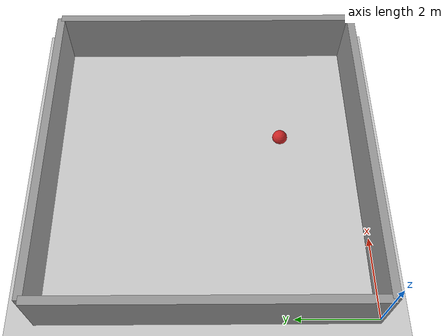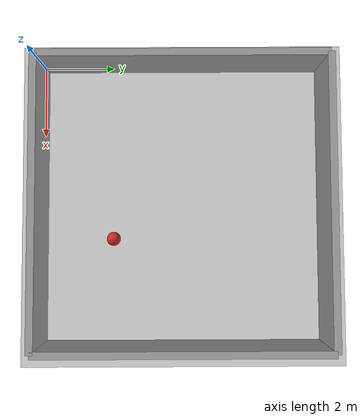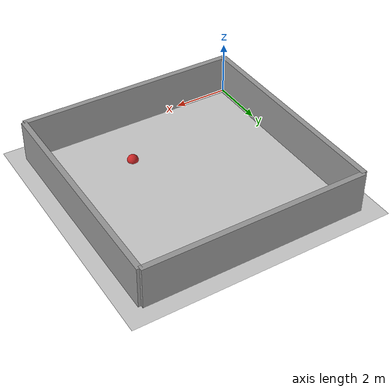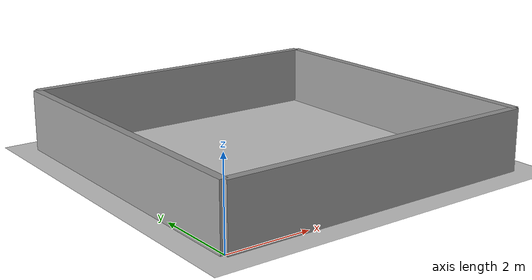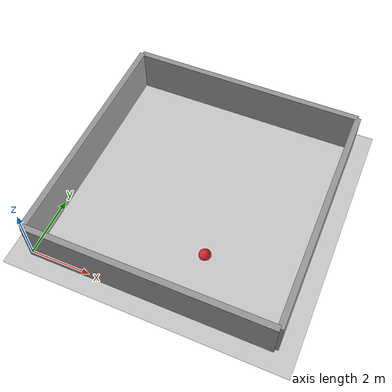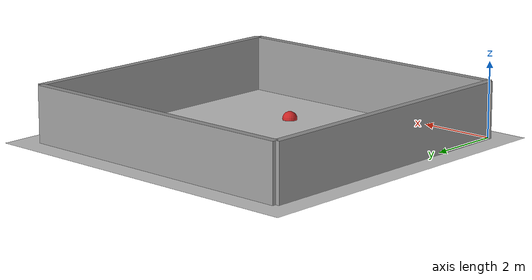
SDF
<?xml version="1.0" ?>
<sdf version="1.6">
  <world name="arena1_world">
    <include>
      <uri>model://ground_plane</uri>
    </include>
    <include>
      <uri>model://sun</uri>
    </include>

    <model name="wall_south">
      <static>true</static>
      <pose>4.0 0.0 0.75 0 0 0</pose>
      <link name="link">
        <collision name="collision">
          <geometry>
            <box>
              <size>8.0 0.2 1.5</size>
            </box>
          </geometry>
        </collision>
        <visual name="visual">
          <geometry>
            <box>
              <size>8.0 0.2 1.5</size>
            </box>
          </geometry>
          <material>
            <script>
              <uri>file://media/materials/scripts/gazebo.material</uri>
              <name>Gazebo/Grey</name>
            </script>
          </material>
        </visual>
      </link>
    </model>

    <model name="wall_north">
      <static>true</static>
      <pose>4.0 8.0 0.75 0 0 0</pose>
      <link name="link">
        <collision name="collision">
          <geometry>
            <box>
              <size>8.0 0.2 1.5</size>
            </box>
          </geometry>
        </collision>
        <visual name="visual">
          <geometry>
            <box>
              <size>8.0 0.2 1.5</size>
            </box>
          </geometry>
          <material>
            <script>
              <uri>file://media/materials/scripts/gazebo.material</uri>
              <name>Gazebo/Grey</name>
            </script>
          </material>
        </visual>
      </link>
    </model>

    <model name="wall_west">
      <static>true</static>
      <pose>0.0 4.0 0.75 0 0 1.5708</pose>
      <link name="link">
        <collision name="collision">
          <geometry>
            <box>
              <size>8.0 0.2 1.5</size>
            </box>
          </geometry>
        </collision>
        <visual name="visual">
          <geometry>
            <box>
              <size>8.0 0.2 1.5</size>
            </box>
          </geometry>
          <material>
            <script>
              <uri>file://media/materials/scripts/gazebo.material</uri>
              <name>Gazebo/Grey</name>
            </script>
          </material>
        </visual>
      </link>
    </model>

    <model name="wall_east">
      <static>true</static>
      <pose>8.0 4.0 0.75 0 0 1.5708</pose>
      <link name="link">
        <collision name="collision">
          <geometry>
            <box>
              <size>8.0 0.2 1.5</size>
            </box>
          </geometry>
        </collision>
        <visual name="visual">
          <geometry>
            <box>
              <size>8.0 0.2 1.5</size>
            </box>
          </geometry>
          <material>
            <script>
              <uri>file://media/materials/scripts/gazebo.material</uri>
              <name>Gazebo/Grey</name>
            </script>
          </material>
        </visual>
      </link>
    </model>

    <model name="goal_marker">
      <static>true</static>
      <pose>5.0 2.0 0.01 0 0 0</pose>
      <link name="link">
        <visual name="visual">
          <geometry>
            <sphere>
              <radius>0.2</radius>
            </sphere>
          </geometry>
          <material>
            <script>
              <uri>file://media/materials/scripts/gazebo.material</uri>
              <name>Gazebo/Red</name>
            </script>
          </material>
        </visual>
      </link>
    </model>
  </world>
</sdf>
